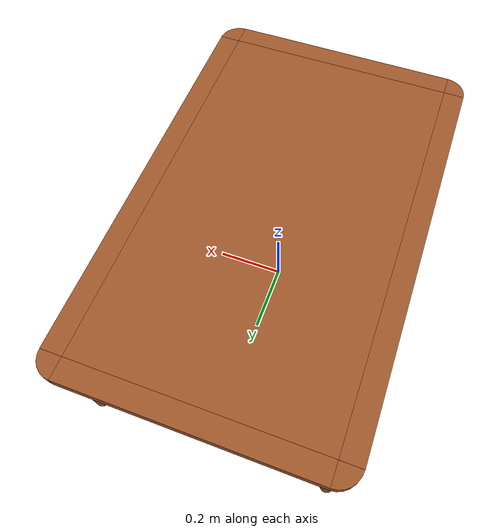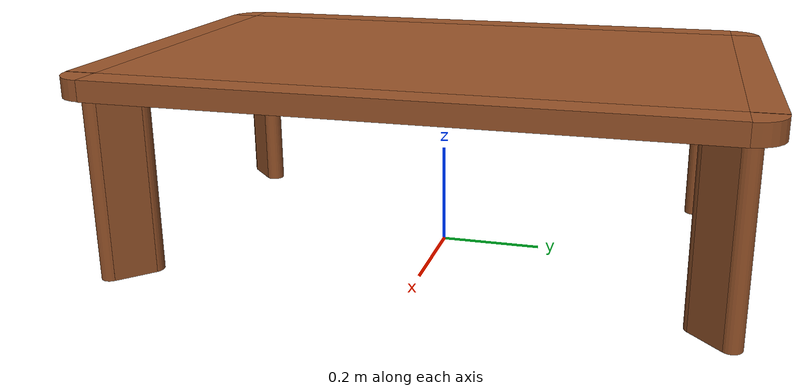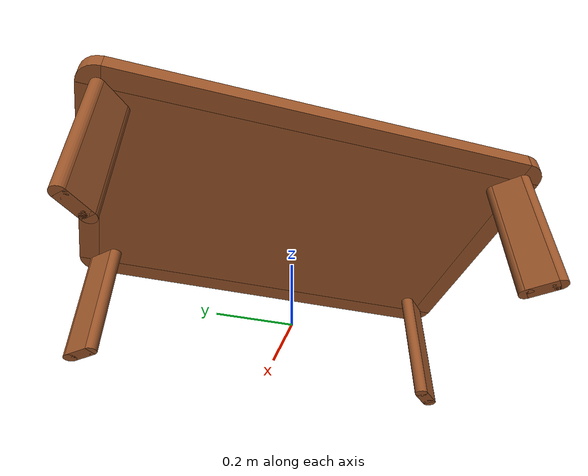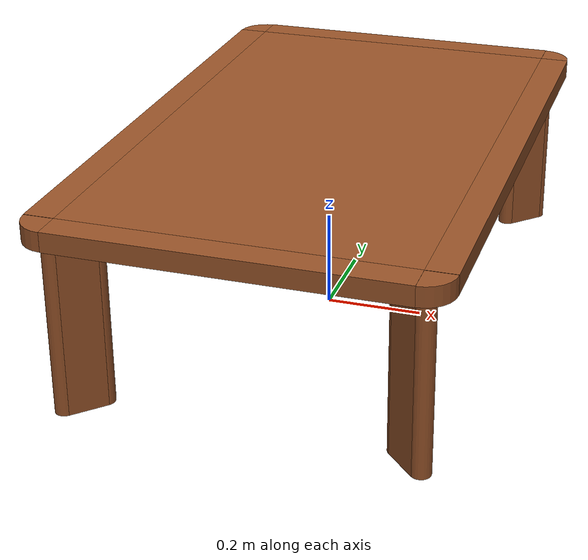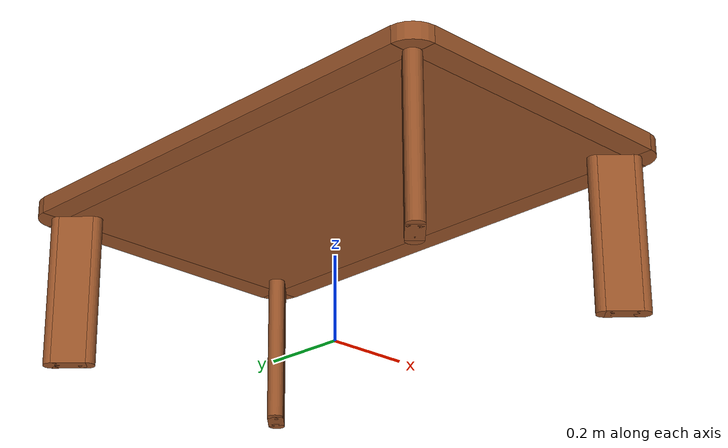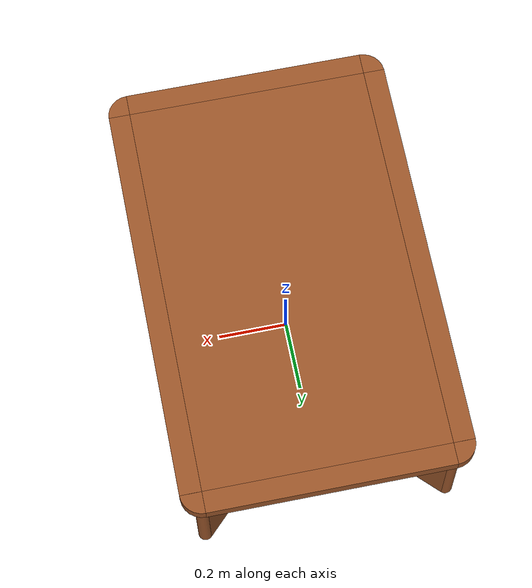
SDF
<?xml version="1.0" ?>
<sdf version="1.4">
    <model name='kitchen_lowtable'>
      <link name='link'>
        <pose>0.0 0.0 0.0 0 0 0</pose>
        <inertial>
          <mass>10.0</mass>
          <inertia>
            <ixx>1</ixx>
            <ixy>0</ixy>
            <ixz>0</ixz>
            <iyy>1</iyy>
            <iyz>0</iyz>
            <izz>1</izz>
          </inertia>
        </inertial>
        <visual name='center_board'>
          <pose>0.0 0.0 0.38 0 0 0</pose>
          <geometry>
            <box>
              <size>0.68 1.13 0.04</size>
            </box>
          </geometry>
          <material>
            <ambient>0.4 0.26 0.13 1</ambient>    <!-- Ambient brown -->
            <diffuse>0.6 0.33 0.16 1</diffuse>    <!-- Diffuse brown -->
            <specular>0.1 0.1 0.1 1</specular>    <!-- Slight shininess -->
            <emissive>0 0 0 1</emissive>          <!-- No glow -->
          </material>
        </visual>
        <collision name='collision_center_board'>
          <pose>0.0 0.0 0.38 0 0 0</pose>
          <geometry>
            <box>
              <size>0.68 1.13 0.04</size>
            </box>
          </geometry>
          <max_contacts>10</max_contacts>
          <surface>
            <bounce/>
            <friction>
              <ode/>
            </friction>
            <contact>
              <ode/>
            </contact>
          </surface>
        </collision>
        <visual name='front_board'>
          <pose>0.37 0 0.38 0 0 0</pose>
          <geometry>
            <box>
              <size>0.06 1.13 0.04</size>
            </box>
          </geometry>
          <material>
            <ambient>0.4 0.26 0.13 1</ambient>    <!-- Ambient brown -->
            <diffuse>0.6 0.33 0.16 1</diffuse>    <!-- Diffuse brown -->
            <specular>0.1 0.1 0.1 1</specular>    <!-- Slight shininess -->
            <emissive>0 0 0 1</emissive>          <!-- No glow -->
          </material>
        </visual>
        <collision name='collision_front_board'>
          <pose>0.37 0 0.38 0 0 0</pose>
          <geometry>
            <box>
              <size>0.06 1.13 0.04</size>
            </box>
          </geometry>
          <max_contacts>10</max_contacts>
          <surface>
            <bounce/>
            <friction>
              <ode/>
            </friction>
            <contact>
              <ode/>
            </contact>
          </surface>
        </collision>
        <visual name='back_board'>
          <pose>-0.37 0 0.38 0 0 0</pose>
          <geometry>
            <box>
              <size>0.06 1.13 0.04</size>
            </box>
          </geometry>
          <material>
            <ambient>0.4 0.26 0.13 1</ambient>    <!-- Ambient brown -->
            <diffuse>0.6 0.33 0.16 1</diffuse>    <!-- Diffuse brown -->
            <specular>0.1 0.1 0.1 1</specular>    <!-- Slight shininess -->
            <emissive>0 0 0 1</emissive>          <!-- No glow -->
          </material>
        </visual>
        <collision name='collision_back_board'>
          <pose>-0.37 0 0.38 0 0 0</pose>
          <geometry>
            <box>
              <size>0.06 1.13 0.04</size>
            </box>
          </geometry>
          <max_contacts>10</max_contacts>
          <surface>
            <bounce/>
            <friction>
              <ode/>
            </friction>
            <contact>
              <ode/>
            </contact>
          </surface>
        </collision>
        <visual name='right_board'>
          <pose>0 0.595 0.38 0 0 0</pose>
          <geometry>
            <box>
              <size>0.68 0.06 0.04</size>
            </box>
          </geometry>
          <material>
            <ambient>0.4 0.26 0.13 1</ambient>    <!-- Ambient brown -->
            <diffuse>0.6 0.33 0.16 1</diffuse>    <!-- Diffuse brown -->
            <specular>0.1 0.1 0.1 1</specular>    <!-- Slight shininess -->
            <emissive>0 0 0 1</emissive>          <!-- No glow -->
          </material>
        </visual>
        <collision name='collision_right_board'>
          <pose>0 0.595 0.38 0 0 0</pose>
          <geometry>
            <box>
              <size>0.68 0.06 0.04</size>
            </box>
          </geometry>
          <max_contacts>10</max_contacts>
          <surface>
            <bounce/>
            <friction>
              <ode/>
            </friction>
            <contact>
              <ode/>
            </contact>
          </surface>
        </collision>
        <visual name='left_board'>
          <pose>0 -0.595 0.38 0 0 0</pose>
          <geometry>
            <box>
              <size>0.68 0.06 0.04</size>
            </box>
          </geometry>
          <material>
            <ambient>0.4 0.26 0.13 1</ambient>    <!-- Ambient brown -->
            <diffuse>0.6 0.33 0.16 1</diffuse>    <!-- Diffuse brown -->
            <specular>0.1 0.1 0.1 1</specular>    <!-- Slight shininess -->
            <emissive>0 0 0 1</emissive>          <!-- No glow -->
          </material>
        </visual>
        <collision name='collision_left_board'>
          <pose>0 -0.595 0.38 0 0 0</pose>
          <geometry>
            <box>
              <size>0.68 0.06 0.04</size>
            </box>
          </geometry>
          <max_contacts>10</max_contacts>
          <surface>
            <bounce/>
            <friction>
              <ode/>
            </friction>
            <contact>
              <ode/>
            </contact>
          </surface>
        </collision>
        <visual name='front_right_corner_board'>
          <pose>0.34 0.565 0.38 0 0 0</pose>
          <geometry>
            <cylinder>
              <radius>0.06</radius>
              <length>0.039</length>
            </cylinder>
          </geometry>
          <material>
            <ambient>0.4 0.26 0.13 1</ambient>    <!-- Ambient brown -->
            <diffuse>0.6 0.33 0.16 1</diffuse>    <!-- Diffuse brown -->
            <specular>0.1 0.1 0.1 1</specular>    <!-- Slight shininess -->
            <emissive>0 0 0 1</emissive>          <!-- No glow -->
          </material>
        </visual>
        <collision name='collision_front_right_corner_board'>
          <pose>0.34 0.565 0.38 0 0 0</pose>
          <geometry>
            <cylinder>
              <radius>0.06</radius>
              <length>0.039</length>
            </cylinder>
          </geometry>
          <max_contacts>10</max_contacts>
          <surface>
            <bounce/>
            <friction>
              <ode/>
            </friction>
            <contact>
              <ode/>
            </contact>
          </surface>
        </collision>
        <visual name='front_left_corner_board'>
          <pose>0.34 -0.565 0.38 0 0 0</pose>
          <geometry>
            <cylinder>
              <radius>0.06</radius>
              <length>0.039</length>
            </cylinder>
          </geometry>
          <material>
            <ambient>0.4 0.26 0.13 1</ambient>    <!-- Ambient brown -->
            <diffuse>0.6 0.33 0.16 1</diffuse>    <!-- Diffuse brown -->
            <specular>0.1 0.1 0.1 1</specular>    <!-- Slight shininess -->
            <emissive>0 0 0 1</emissive>          <!-- No glow -->
          </material>
        </visual>
        <collision name='collision_front_left_corner_board'>
          <pose>0.34 -0.565 0.38 0 0 0</pose>
          <geometry>
            <cylinder>
              <radius>0.06</radius>
              <length>0.039</length>
            </cylinder>
          </geometry>
          <max_contacts>10</max_contacts>
          <surface>
            <bounce/>
            <friction>
              <ode/>
            </friction>
            <contact>
              <ode/>
            </contact>
          </surface>
        </collision>
        <visual name='front_back_right_corner_board'>
          <pose>-0.34 0.565 0.38 0 0 0</pose>
          <geometry>
            <cylinder>
              <radius>0.06</radius>
              <length>0.039</length>
            </cylinder>
          </geometry>
          <material>
            <ambient>0.4 0.26 0.13 1</ambient>    <!-- Ambient brown -->
            <diffuse>0.6 0.33 0.16 1</diffuse>    <!-- Diffuse brown -->
            <specular>0.1 0.1 0.1 1</specular>    <!-- Slight shininess -->
            <emissive>0 0 0 1</emissive>          <!-- No glow -->
          </material>
        </visual>
        <collision name='collision_back_right_corner_board'>
          <pose>-0.34 0.565 0.38 0 0 0</pose>
          <geometry>
            <cylinder>
              <radius>0.06</radius>
              <length>0.039</length>
            </cylinder>
          </geometry>
          <max_contacts>10</max_contacts>
          <surface>
            <bounce/>
            <friction>
              <ode/>
            </friction>
            <contact>
              <ode/>
            </contact>
          </surface>
        </collision>
        <visual name='front_back_left_corner_board'>
          <pose>-0.34 -0.565 0.38 0 0 0</pose>
          <geometry>
            <cylinder>
              <radius>0.06</radius>
              <length>0.039</length>
            </cylinder>
          </geometry>
          <material>
            <ambient>0.4 0.26 0.13 1</ambient>    <!-- Ambient brown -->
            <diffuse>0.6 0.33 0.16 1</diffuse>    <!-- Diffuse brown -->
            <specular>0.1 0.1 0.1 1</specular>    <!-- Slight shininess -->
            <emissive>0 0 0 1</emissive>          <!-- No glow -->
          </material>
        </visual>
        <collision name='collision_back_left_corner_board'>
          <pose>-0.34 -0.565 0.38 0 0 0</pose>
          <geometry>
            <cylinder>
              <radius>0.06</radius>
              <length>0.039</length>
            </cylinder>
          </geometry>
          <max_contacts>10</max_contacts>
          <surface>
            <bounce/>
            <friction>
              <ode/>
            </friction>
            <contact>
              <ode/>
            </contact>
          </surface>
        </collision>
        <visual name='front_left_corner_frame1'>
          <pose>0.345858 -0.57086 0.18 0 0 0</pose>
          <geometry>
            <cylinder>
              <radius>0.02</radius>
              <length>0.36</length>
            </cylinder>
          </geometry>
          <material>
            <ambient>0.4 0.26 0.13 1</ambient>    <!-- Ambient brown -->
            <diffuse>0.6 0.33 0.16 1</diffuse>    <!-- Diffuse brown -->
            <specular>0.1 0.1 0.1 1</specular>    <!-- Slight shininess -->
            <emissive>0 0 0 1</emissive>          <!-- No glow -->
          </material>
        </visual>
        <collision name='collision_front_left_corner_frame1'>
          <pose>0.345858 -0.57086 0.18 0 0 0</pose>
          <geometry>
            <cylinder>
              <radius>0.02</radius>
              <length>0.36</length>
            </cylinder>
          </geometry>
          <max_contacts>10</max_contacts>
          <surface>
            <bounce/>
            <friction>
              <ode/>
            </friction>
            <contact>
              <ode/>
            </contact>
          </surface>
        </collision>
        <visual name='front_left_corner_frame2'>
          <pose>0.317574 -0.54257 0.18 0 0 0.7854</pose>
          <geometry>
            <box>
              <size>0.04 0.08 0.36</size>
            </box>
          </geometry>
          <material>
            <ambient>0.4 0.26 0.13 1</ambient>    <!-- Ambient brown -->
            <diffuse>0.6 0.33 0.16 1</diffuse>    <!-- Diffuse brown -->
            <specular>0.1 0.1 0.1 1</specular>    <!-- Slight shininess -->
            <emissive>0 0 0 1</emissive>          <!-- No glow -->
          </material>
        </visual>
        <collision name='collision_front_left_corner_frame2'>
          <pose>0.317574 -0.54257 0.18 0 0 0.7854</pose>
          <geometry>
            <box>
              <size>0.04 0.08 0.36</size>
            </box>
          </geometry>
          <max_contacts>10</max_contacts>
          <surface>
            <bounce/>
            <friction>
              <ode/>
            </friction>
            <contact>
              <ode/>
            </contact>
          </surface>
        </collision>
        <visual name='front_left_corner_frame3'>
          <pose>0.289289 -0.51429 0.18 0 0 0</pose>
          <geometry>
            <cylinder>
              <radius>0.02</radius>
              <length>0.36</length>
            </cylinder>
          </geometry>
          <material>
            <ambient>0.4 0.26 0.13 1</ambient>    <!-- Ambient brown -->
            <diffuse>0.6 0.33 0.16 1</diffuse>    <!-- Diffuse brown -->
            <specular>0.1 0.1 0.1 1</specular>    <!-- Slight shininess -->
            <emissive>0 0 0 1</emissive>          <!-- No glow -->
          </material>
        </visual>
        <collision name='collision_front_left_corner_frame3'>
          <pose>0.289289 -0.51429 0.18 0 0 0</pose>
          <geometry>
            <cylinder>
              <radius>0.02</radius>
              <length>0.36</length>
            </cylinder>
          </geometry>
          <max_contacts>10</max_contacts>
          <surface>
            <bounce/>
            <friction>
              <ode/>
            </friction>
            <contact>
              <ode/>
            </contact>
          </surface>
        </collision>
        <visual name='front_right_corner_frame1'>
          <pose>0.345858 0.57086 0.18 0 0 0</pose>
          <geometry>
            <cylinder>
              <radius>0.02</radius>
              <length>0.36</length>
            </cylinder>
          </geometry>
          <material>
            <ambient>0.4 0.26 0.13 1</ambient>    <!-- Ambient brown -->
            <diffuse>0.6 0.33 0.16 1</diffuse>    <!-- Diffuse brown -->
            <specular>0.1 0.1 0.1 1</specular>    <!-- Slight shininess -->
            <emissive>0 0 0 1</emissive>          <!-- No glow -->
          </material>
        </visual>
        <collision name='collision_front_right_corner_frame1'>
          <pose>0.345858 0.57086 0.18 0 0 0</pose>
          <geometry>
            <cylinder>
              <radius>0.02</radius>
              <length>0.36</length>
            </cylinder>
          </geometry>
          <max_contacts>10</max_contacts>
          <surface>
            <bounce/>
            <friction>
              <ode/>
            </friction>
            <contact>
              <ode/>
            </contact>
          </surface>
        </collision>
        <visual name='front_right_corner_frame2'>
          <pose>0.317574 0.54257 0.18 0 0 -0.7854</pose>
          <geometry>
            <box>
              <size>0.04 0.08 0.36</size>
            </box>
          </geometry>
          <material>
            <ambient>0.4 0.26 0.13 1</ambient>    <!-- Ambient brown -->
            <diffuse>0.6 0.33 0.16 1</diffuse>    <!-- Diffuse brown -->
            <specular>0.1 0.1 0.1 1</specular>    <!-- Slight shininess -->
            <emissive>0 0 0 1</emissive>          <!-- No glow -->
          </material>
        </visual>
        <collision name='collision_front_right_corner_frame2'>
          <pose>0.317574 0.54257 0.18 0 0 -0.7854</pose>
          <geometry>
            <box>
              <size>0.04 0.08 0.36</size>
            </box>
          </geometry>
          <max_contacts>10</max_contacts>
          <surface>
            <bounce/>
            <friction>
              <ode/>
            </friction>
            <contact>
              <ode/>
            </contact>
          </surface>
        </collision>
        <visual name='front_right_corner_frame3'>
          <pose>0.289289 0.51429 0.18 0 0 0</pose>
          <geometry>
            <cylinder>
              <radius>0.02</radius>
              <length>0.36</length>
            </cylinder>
          </geometry>
          <material>
            <ambient>0.4 0.26 0.13 1</ambient>    <!-- Ambient brown -->
            <diffuse>0.6 0.33 0.16 1</diffuse>    <!-- Diffuse brown -->
            <specular>0.1 0.1 0.1 1</specular>    <!-- Slight shininess -->
            <emissive>0 0 0 1</emissive>          <!-- No glow -->
          </material>
        </visual>
        <collision name='collision_front_right_corner_frame3'>
          <pose>0.289289 0.51429 0.18 0 0 0</pose>
          <geometry>
            <cylinder>
              <radius>0.02</radius>
              <length>0.36</length>
            </cylinder>
          </geometry>
          <max_contacts>10</max_contacts>
          <surface>
            <bounce/>
            <friction>
              <ode/>
            </friction>
            <contact>
              <ode/>
            </contact>
          </surface>
        </collision>
        <visual name='back_left_corner_frame1'>
          <pose>-0.345858 -0.57086 0.18 0 0 0</pose>
          <geometry>
            <cylinder>
              <radius>0.02</radius>
              <length>0.36</length>
            </cylinder>
          </geometry>
          <material>
            <ambient>0.4 0.26 0.13 1</ambient>    <!-- Ambient brown -->
            <diffuse>0.6 0.33 0.16 1</diffuse>    <!-- Diffuse brown -->
            <specular>0.1 0.1 0.1 1</specular>    <!-- Slight shininess -->
            <emissive>0 0 0 1</emissive>          <!-- No glow -->
          </material>
        </visual>
        <collision name='collision_back_left_corner_frame1'>
          <pose>-0.345858 -0.57086 0.18 0 0 0</pose>
          <geometry>
            <cylinder>
              <radius>0.02</radius>
              <length>0.36</length>
            </cylinder>
          </geometry>
          <max_contacts>10</max_contacts>
          <surface>
            <bounce/>
            <friction>
              <ode/>
            </friction>
            <contact>
              <ode/>
            </contact>
          </surface>
        </collision>
        <visual name='back_left_corner_frame2'>
          <pose>-0.317574 -0.54257 0.18 0 0 -0.7854</pose>
          <geometry>
            <box>
              <size>0.04 0.08 0.36</size>
            </box>
          </geometry>
          <material>
            <ambient>0.4 0.26 0.13 1</ambient>    <!-- Ambient brown -->
            <diffuse>0.6 0.33 0.16 1</diffuse>    <!-- Diffuse brown -->
            <specular>0.1 0.1 0.1 1</specular>    <!-- Slight shininess -->
            <emissive>0 0 0 1</emissive>          <!-- No glow -->
          </material>
        </visual>
        <collision name='collision_back_left_corner_frame2'>
          <pose>-0.317574 -0.54257 0.18 0 0 -0.7854</pose>
          <geometry>
            <box>
              <size>0.04 0.08 0.36</size>
            </box>
          </geometry>
          <max_contacts>10</max_contacts>
          <surface>
            <bounce/>
            <friction>
              <ode/>
            </friction>
            <contact>
              <ode/>
            </contact>
          </surface>
        </collision>
        <visual name='back_left_corner_frame3'>
          <pose>-0.289289 -0.51429 0.18 0 0 0</pose>
          <geometry>
            <cylinder>
              <radius>0.02</radius>
              <length>0.36</length>
            </cylinder>
          </geometry>
          <material>
            <ambient>0.4 0.26 0.13 1</ambient>    <!-- Ambient brown -->
            <diffuse>0.6 0.33 0.16 1</diffuse>    <!-- Diffuse brown -->
            <specular>0.1 0.1 0.1 1</specular>    <!-- Slight shininess -->
            <emissive>0 0 0 1</emissive>          <!-- No glow -->
          </material>
        </visual>
        <collision name='collision_back_left_corner_frame3'>
          <pose>-0.289289 -0.51429 0.18 0 0 0</pose>
          <geometry>
            <cylinder>
              <radius>0.02</radius>
              <length>0.36</length>
            </cylinder>
          </geometry>
          <max_contacts>10</max_contacts>
          <surface>
            <bounce/>
            <friction>
              <ode/>
            </friction>
            <contact>
              <ode/>
            </contact>
          </surface>
        </collision>
        <visual name='back_right_corner_frame1'>
          <pose>-0.345858 0.57086 0.18 0 0 0</pose>
          <geometry>
            <cylinder>
              <radius>0.02</radius>
              <length>0.36</length>
            </cylinder>
          </geometry>
          <material>
            <ambient>0.4 0.26 0.13 1</ambient>    <!-- Ambient brown -->
            <diffuse>0.6 0.33 0.16 1</diffuse>    <!-- Diffuse brown -->
            <specular>0.1 0.1 0.1 1</specular>    <!-- Slight shininess -->
            <emissive>0 0 0 1</emissive>          <!-- No glow -->
          </material>
        </visual>
        <collision name='collision_back_right_corner_frame1'>
          <pose>-0.345858 0.57086 0.18 0 0 0</pose>
          <geometry>
            <cylinder>
              <radius>0.02</radius>
              <length>0.36</length>
            </cylinder>
          </geometry>
          <max_contacts>10</max_contacts>
          <surface>
            <bounce/>
            <friction>
              <ode/>
            </friction>
            <contact>
              <ode/>
            </contact>
          </surface>
        </collision>
        <visual name='back_right_corner_frame2'>
          <pose>-0.317574 0.54257 0.18 0 0 0.7854</pose>
          <geometry>
            <box>
              <size>0.04 0.08 0.36</size>
            </box>
          </geometry>
          <material>
            <ambient>0.4 0.26 0.13 1</ambient>    <!-- Ambient brown -->
            <diffuse>0.6 0.33 0.16 1</diffuse>    <!-- Diffuse brown -->
            <specular>0.1 0.1 0.1 1</specular>    <!-- Slight shininess -->
            <emissive>0 0 0 1</emissive>          <!-- No glow -->
          </material>
        </visual>
        <collision name='collision_back_right_corner_frame2'>
          <pose>-0.317574 0.54257 0.18 0 0 0.7854</pose>
          <geometry>
            <box>
              <size>0.04 0.08 0.36</size>
            </box>
          </geometry>
          <max_contacts>10</max_contacts>
          <surface>
            <bounce/>
            <friction>
              <ode/>
            </friction>
            <contact>
              <ode/>
            </contact>
          </surface>
        </collision>
        <visual name='back_right_corner_frame3'>
          <pose>-0.289289 0.51429 0.18 0 0 0</pose>
          <geometry>
            <cylinder>
              <radius>0.02</radius>
              <length>0.36</length>
            </cylinder>
          </geometry>
          <material>
            <ambient>0.4 0.26 0.13 1</ambient>    <!-- Ambient brown -->
            <diffuse>0.6 0.33 0.16 1</diffuse>    <!-- Diffuse brown -->
            <specular>0.1 0.1 0.1 1</specular>    <!-- Slight shininess -->
            <emissive>0 0 0 1</emissive>          <!-- No glow -->
          </material>
        </visual>
        <collision name='collision_back_right_corner_frame3'>
          <pose>-0.289289 0.51429 0.18 0 0 0</pose>
          <geometry>
            <cylinder>
              <radius>0.02</radius>
              <length>0.36</length>
            </cylinder>
          </geometry>
          <max_contacts>10</max_contacts>
          <surface>
            <bounce/>
            <friction>
              <ode/>
            </friction>
            <contact>
              <ode/>
            </contact>
          </surface>
        </collision>
        <velocity_decay>
          <linear>0</linear>
          <angular>0</angular>
        </velocity_decay>
        <self_collide>0</self_collide>
        <kinematic>0</kinematic>
        <gravity>1</gravity>
      </link>
      <static>1</static>
    </model>
</sdf>
